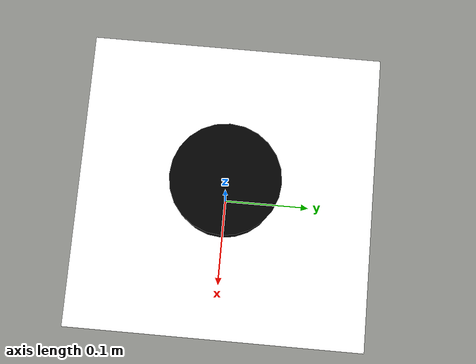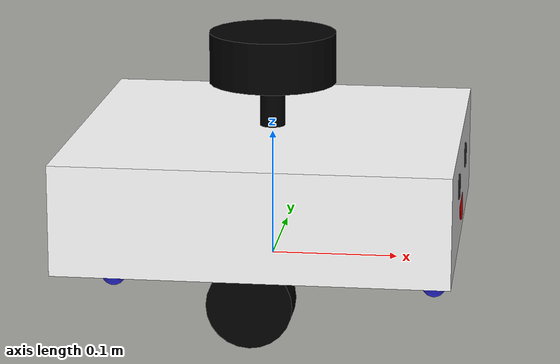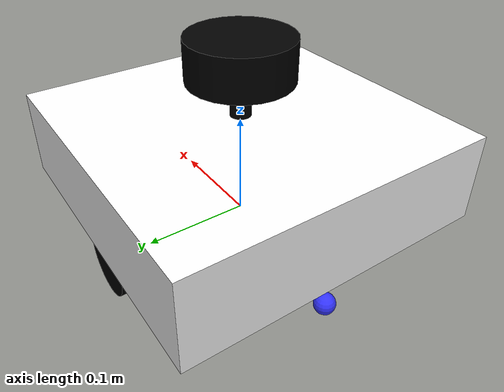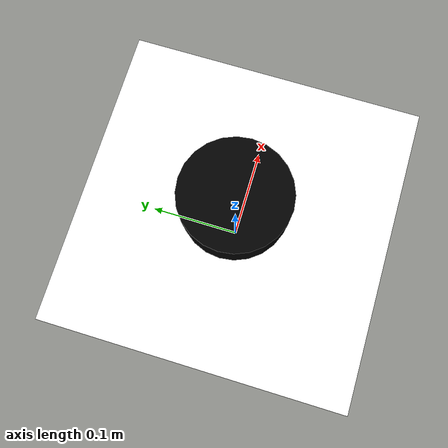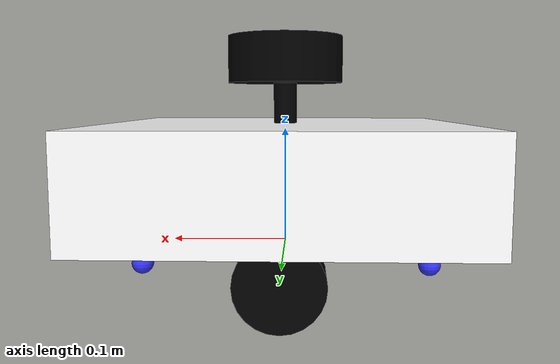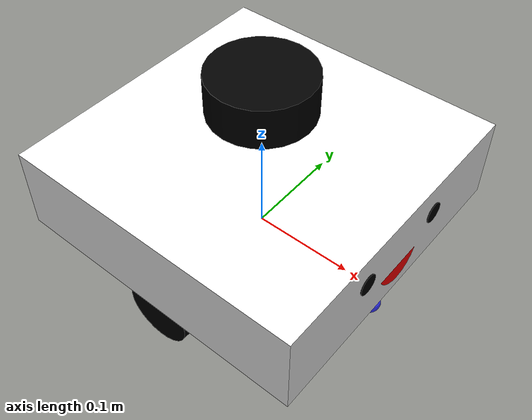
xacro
<?xml version="1.0"?>
<robot xmlns:xacro="http://www.ros.org/wiki/xacro" name="robot">

    <xacro:arg name="use_ros2_control" default="true" />
    <xacro:arg name="sim_mode" default="false" />

    <xacro:if value="$(arg use_ros2_control)">
        <xacro:include filename="ros2_control.xacro" />
    </xacro:if>
    <xacro:unless value="$(arg use_ros2_control)">
        <xacro:include filename="gazebo_control.xacro" />
    </xacro:unless>

    <xacro:include filename="robot_core.xacro" />
    <xacro:include filename="lidar.xacro" />
    <xacro:include filename="face.xacro" />
    <xacro:include filename="imu.xacro" />

</robot>

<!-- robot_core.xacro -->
<robot xmlns:xacro="http://www.ros.org/wiki/xacro">

    <xacro:include filename="inertial_macros.xacro" />

    <xacro:property name="chassis_length" value="0.30" />
    <xacro:property name="chassis_width" value="0.30" />
    <xacro:property name="chassis_height" value="0.085" />
    <xacro:property name="chassis_mass" value="1.5" />
    <xacro:property name="wheel_radius" value="0.0325" />
    <xacro:property name="wheel_thickness" value="0.027" />
    <xacro:property name="wheel_mass" value="0.05" />
    <xacro:property name="wheel_offset_x" value="0.15" />
    <xacro:property name="wheel_offset_y" value="0.13" />
    <xacro:property name="wheel_offset_z" value="-0.02" />
    <xacro:property name="caster_wheel_radius" value="0.01" />
    <xacro:property name="caster_wheel_mass" value="0.1" />
    <xacro:property name="caster_wheel_offset_x" value="0.02" />
    <xacro:property name="caster_wheel_offset_z"
        value="${wheel_offset_z - wheel_radius + caster_wheel_radius}" />
    <xacro:property name="caster1_wheel_radius" value="0.01" />
    <xacro:property name="caster1_wheel_mass" value="0.1" />
    <xacro:property name="caster1_wheel_offset_x" value="0.28" />
    <xacro:property name="caster1_wheel_offset_z"
        value="${wheel_offset_z - wheel_radius + caster1_wheel_radius}" />

    <material name="white">
        <color rgba="1 1 1 1" />
    </material>

    <material name="orange">
        <color rgba="1 0.3 0.1 1" />
    </material>

    <material name="blue">
        <color rgba="0.2 0.2 1 1" />
    </material>

    <material name="black">
        <color rgba="0 0 0 1" />
    </material>

    <material name="red">
        <color rgba="1 0 0 1" />
    </material>

    <!-- BASE LINK -->

    <link name="base_link">

    </link>

    <!-- BASE_FOOTPRINT LINK -->

    <joint name="base_footprint_joint" type="fixed">
        <parent link="base_link" />
        <child link="base_footprint" />
        <origin xyz="0 0 0" rpy="0 0 0" />
    </joint>

    <link name="base_footprint">

    </link>

    <!-- CHASSIS LINK -->

    <joint name="chassis_joint" type="fixed">
        <parent link="base_link" />
        <child link="chassis" />
        <origin xyz="${-wheel_offset_x} 0 ${-wheel_offset_z}" />
    </joint>

    <link name="chassis">
        <visual>
            <origin xyz="${chassis_length/2} 0 ${chassis_height/2}" />
            <geometry>
                <box size="${chassis_length} ${chassis_width} ${chassis_height}" />
            </geometry>
            <material name="white" />
        </visual>
        <collision>
            <origin xyz="${chassis_length/2} 0 ${chassis_height/2}" />
            <geometry>
                <box size="${chassis_length} ${chassis_width} ${chassis_height}" />
            </geometry>
        </collision>
        <xacro:inertial_box mass="0.5" x="${chassis_length}" y="${chassis_width}"
            z="${chassis_height}">
            <origin xyz="${chassis_length/2} 0 ${chassis_height/2}" rpy="0 0 0" />
        </xacro:inertial_box>
    </link>

    <gazebo reference="chassis">
        <material>Gazebo/White</material>
    </gazebo>

    <!-- LEFT WHEEL LINK -->

    <joint name="left_wheel_joint" type="continuous">
        <parent link="base_link" />
        <child link="left_wheel" />
        <origin xyz="0 ${wheel_offset_y} 0" rpy="-${pi/2} 0 0" />
        <axis xyz="0 0 1" />
    </joint>

    <link name="left_wheel">
        <visual>
            <geometry>
                <cylinder radius="${wheel_radius}" length="${wheel_thickness}" />
            </geometry>
            <material name="black" />
        </visual>
        <collision>
            <geometry>
                <sphere radius="${wheel_radius}" />
            </geometry>
        </collision>
        <xacro:inertial_cylinder mass="${wheel_mass}" length="${wheel_thickness}"
            radius="${wheel_radius}">
            <origin xyz="0 0 0" rpy="0 0 0" />
        </xacro:inertial_cylinder>
    </link>

    <gazebo reference="left_wheel">
        <material>Gazebo/Black</material>
    </gazebo>

    <!-- RIGHT WHEEL LINK -->

    <joint name="right_wheel_joint" type="continuous">
        <parent link="base_link" />
        <child link="right_wheel" />
        <origin xyz="0 ${-wheel_offset_y} 0" rpy="${pi/2} 0 0" />
        <axis xyz="0 0 -1" />
    </joint>

    <link name="right_wheel">
        <visual>
            <geometry>
                <cylinder radius="${wheel_radius}" length="${wheel_thickness}" />
            </geometry>
            <material name="black" />
        </visual>
        <collision>
            <geometry>
                <sphere radius="${wheel_radius}" />
            </geometry>
        </collision>
        <xacro:inertial_cylinder mass="${wheel_mass}" length="${wheel_thickness}"
            radius="${wheel_radius}">
            <origin xyz="0 0 0" rpy="0 0 0" />
        </xacro:inertial_cylinder>
    </link>

    <gazebo reference="right_wheel">
        <material>Gazebo/Black</material>
    </gazebo>

    <!-- CASTER WHEEL LINK -->

    <joint name="caster_wheel_joint" type="fixed">
        <parent link="chassis" />
        <child link="caster_wheel" />
        <origin xyz="${caster_wheel_offset_x} 0 ${caster_wheel_offset_z}" />
    </joint>

    <link name="caster_wheel">
        <visual>
            <geometry>
                <sphere radius="${caster_wheel_radius}" />
            </geometry>
            <material name="blue" />
        </visual>
        <collision>
            <geometry>
                <sphere radius="${caster_wheel_radius}" />
            </geometry>
        </collision>
        <xacro:inertial_sphere mass="${caster_wheel_mass}" radius="${caster_wheel_radius}">
            <origin xyz="0 0 0" rpy="0 0 0" />
        </xacro:inertial_sphere>
    </link>

    <gazebo reference="caster_wheel">
        <material>Gazebo/Blue</material>
        <mu1 value="0.001" />
        <mu2 value="0.001" />
    </gazebo>

    <!-- CASTER1 WHEEL LINK -->

    <joint name="caster1_wheel_joint" type="fixed">
        <parent link="chassis" />
        <child link="caster1_wheel" />
        <origin xyz="${caster1_wheel_offset_x} 0 ${caster1_wheel_offset_z}" />
    </joint>

    <link name="caster1_wheel">
        <visual>
            <geometry>
                <sphere radius="${caster1_wheel_radius}" />
            </geometry>
            <material name="blue" />
        </visual>
        <collision>
            <geometry>
                <sphere radius="${caster1_wheel_radius}" />
            </geometry>
        </collision>
        <xacro:inertial_sphere mass="${caster1_wheel_mass}" radius="${caster1_wheel_radius}">
            <origin xyz="0 0 0" rpy="0 0 0" />
        </xacro:inertial_sphere>
    </link>

    <gazebo reference="caster1_wheel">
        <material>Gazebo/Blue</material>
        <mu1 value="0.001" />
        <mu2 value="0.001" />
    </gazebo>

</robot>

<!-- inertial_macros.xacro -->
<robot xmlns:xacro="http://www.ros.org/wiki/xacro">

    <!-- Specify some standard inertial calculations
    https://en.wikipedia.org/wiki/List_of_moments_of_inertia -->
    <!-- These make use of xacro's mathematical functionality -->

    <xacro:macro name="inertial_sphere" params="mass radius *origin">
        <inertial>
            <xacro:insert_block name="origin" />
            <mass value="${mass}" />
            <inertia ixx="${(2/5) * mass * (radius*radius)}" ixy="0.0" ixz="0.0"
                iyy="${(2/5) * mass * (radius*radius)}" iyz="0.0"
                izz="${(2/5) * mass * (radius*radius)}" />
        </inertial>
    </xacro:macro>

    <xacro:macro name="inertial_box" params="mass x y z *origin">
        <inertial>
            <xacro:insert_block name="origin" />
            <mass value="${mass}" />
            <inertia ixx="${(1/12) * mass * (y*y+z*z)}" ixy="0.0" ixz="0.0"
                iyy="${(1/12) * mass * (x*x+z*z)}" iyz="0.0"
                izz="${(1/12) * mass * (x*x+y*y)}" />
        </inertial>
    </xacro:macro>

    <xacro:macro name="inertial_cylinder" params="mass length radius *origin">
        <inertial>
            <xacro:insert_block name="origin" />
            <mass value="${mass}" />
            <inertia ixx="${(1/12) * mass * (3*radius*radius + length*length)}" ixy="0.0" ixz="0.0"
                iyy="${(1/12) * mass * (3*radius*radius + length*length)}" iyz="0.0"
                izz="${(1/2) * mass * (radius*radius)}" />
        </inertial>
    </xacro:macro>

</robot>

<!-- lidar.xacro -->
<robot xmlns:xacro="http://www.ros.org/wiki/xacro">

    <joint name="laser_joint" type="fixed">
        <parent link="chassis" />
        <child link="laser_frame" />
        <origin xyz="0.15 0 0.14" rpy="0 0 0" />
    </joint>

    <link name="laser_frame">
        <visual>
            <geometry>
                <cylinder radius="0.05" length="0.04" />
            </geometry>
            <material name="black" />
        </visual>
        <visual>
            <origin xyz="0 0 -0.05" />
            <geometry>
                <cylinder radius="0.01" length="0.1" />
            </geometry>
            <material name="black" />
        </visual>
        <collision>
            <geometry>
                <cylinder radius="0.05" length="0.04" />
            </geometry>
        </collision>
        <xacro:inertial_cylinder mass="0.1" length="0.04" radius="0.05">
            <origin xyz="0 0 0" rpy="0 0 0" />
        </xacro:inertial_cylinder>
    </link>

    <gazebo reference="laser_frame">
        <material>Gazebo/Black</material>

        <sensor name="laser" type="ray">
            <pose> 0 0 0 0 0 0 </pose>
            <visualize>true</visualize>
            <always_on>true</always_on>
            <update_rate>10</update_rate>
            <ray>
                <scan>
                    <horizontal>
                        <samples>360</samples>
                        <resolution>1.00000</resolution>
                        <min_angle>-3.14</min_angle>
                        <max_angle>3.14</max_angle>
                    </horizontal>
                </scan>
                <range>
                    <min>0.3</min>
                    <max>12</max>
                    <resolution>0.015000</resolution>
                </range>
                <noise>
                    <type>gaussian</type>
                    <mean>0.0</mean>
                    <stddev>0.01</stddev>
                </noise>
            </ray>
            <plugin name="laser_controller" filename="libgazebo_ros_ray_sensor.so">
                <ros>
                    <remapping>~/out:=scan</remapping>
                </ros>
                <output_type>sensor_msgs/LaserScan</output_type>
                <alwaysOn>true</alwaysOn>
                <updateRate>10</updateRate>
                <topicName>scan</topicName>
                <frame_name>laser_frame</frame_name>
                <output_type>sensor_msgs/LaserScan</output_type>
            </plugin>
        </sensor>
    </gazebo>

</robot>

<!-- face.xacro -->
<robot xmlns:xacro="http://www.ros.org/wiki/xacro">

    <joint name="face_joint" type="fixed">
        <parent link="chassis" />
        <child link="face_link" />
        <origin xyz="${chassis_length} 0 ${chassis_height/2}" rpy="0 0 0" />
    </joint>

    <link name="face_link">
        <visual>
            <origin xyz="0 0.05 0.01" rpy="0 ${pi/2} 0" />
            <geometry>
                <cylinder radius="0.01" length="0.002" />
            </geometry>
            <material name="black" />
        </visual>

        <visual>
            <origin xyz="0 -0.05 0.01" rpy="0 ${pi/2} 0" />
            <geometry>
                <cylinder radius="0.01" length="0.002" />
            </geometry>
            <material name="black" />
        </visual>

        <visual>
            <origin xyz="-0.011 0 -0.00" rpy="0 ${1.5} 0" />
            <geometry>
                <cylinder radius="0.03" length="0.02" />
            </geometry>
            <material name="red" />
        </visual>
    </link>

    <gazebo reference="face_link">
        <material>Gazebo/Black</material>
    </gazebo>

</robot>

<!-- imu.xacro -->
<robot xmlns:xacro="http://ros.org/wiki/xacro">

    <!-- Imu sensor  -->
    <link name="imu_link">
        <visual name="imu_visual">
            <geometry>
                <mesh filename="package://agvbot_pro/model/mpu6050.dae" />
            </geometry>
        </visual>
    </link>

    <joint name="imu_joint" type="fixed">
        <parent link="chassis" />
        <child link="imu_link" />
        <origin xyz="0.15 0 0" rpy="0 ${pi} ${pi/2}" />
    </joint>

    <gazebo reference="imu_link">
        <sensor name="mpu6050_imu" type="imu">
            <plugin name="imu_controller" filename="libgazebo_ros_imu_sensor.so">
                <ros>
                    <remapping>~/out:=imu_broadcaster/imu</remapping>
                </ros>
                <initial_orientation_as_reference>false</initial_orientation_as_reference>
            </plugin>
            <always_on>true</always_on>
            <update_rate>100</update_rate>
            <visualize>true</visualize>
            <imu>
                <angular_velocity>
                    <x>
                        <noise type="gaussian">
                            <mean>0.0</mean>
                            <stddev>2e-4</stddev>
                        </noise>
                    </x>
                    <y>
                        <noise type="gaussian">
                            <mean>0.0</mean>
                            <stddev>2e-4</stddev>
                        </noise>
                    </y>
                    <z>
                        <noise type="gaussian">
                            <mean>0.0</mean>
                            <stddev>2e-4</stddev>
                        </noise>
                    </z>
                </angular_velocity>
                <linear_acceleration>
                    <x>
                        <noise type="gaussian">
                            <mean>0.0</mean>
                            <stddev>1.7e-2</stddev>
                        </noise>
                    </x>
                    <y>
                        <noise type="gaussian">
                            <mean>0.0</mean>
                            <stddev>1.7e-2</stddev>
                        </noise>
                    </y>
                    <z>
                        <noise type="gaussian">
                            <mean>0.0</mean>
                            <stddev>1.7e-2</stddev>
                        </noise>
                    </z>
                </linear_acceleration>
                <orientation>
                    <x>
                        <noise type="gaussian">
                            <mean>0.0</mean>
                            <stddev>2e-3</stddev>
                        </noise>
                    </x>
                    <y>
                        <noise type="gaussian">
                            <mean>0.0</mean>
                            <stddev>2e-3</stddev>
                        </noise>
                    </y>
                    <z>
                        <noise type="gaussian">
                            <mean>0.0</mean>
                            <stddev>2e-3</stddev>
                        </noise>
                    </z>
                </orientation>
            </imu>
        </sensor>
    </gazebo>

</robot>
